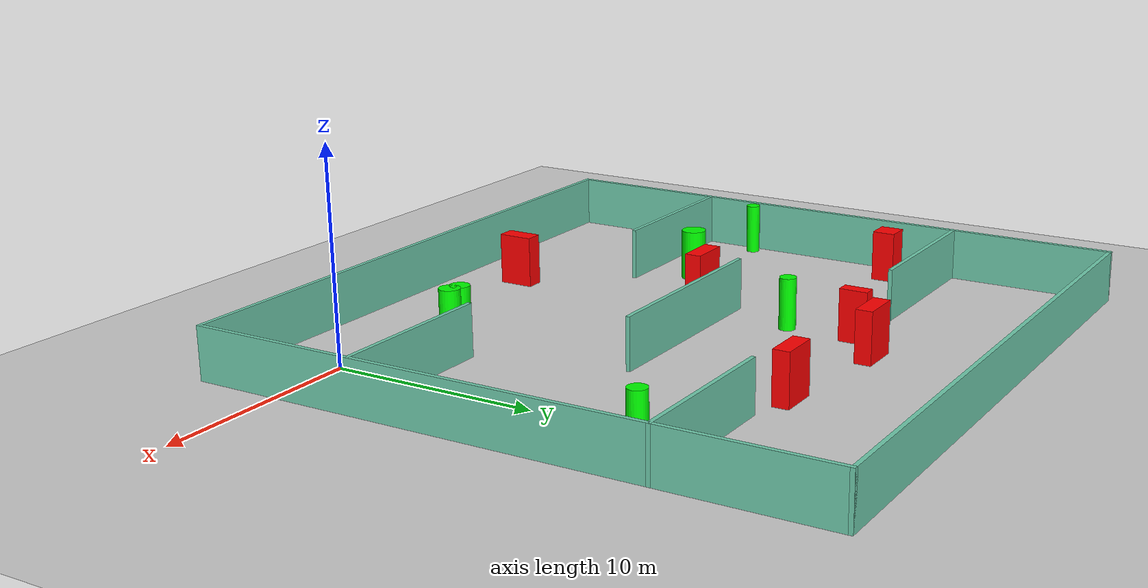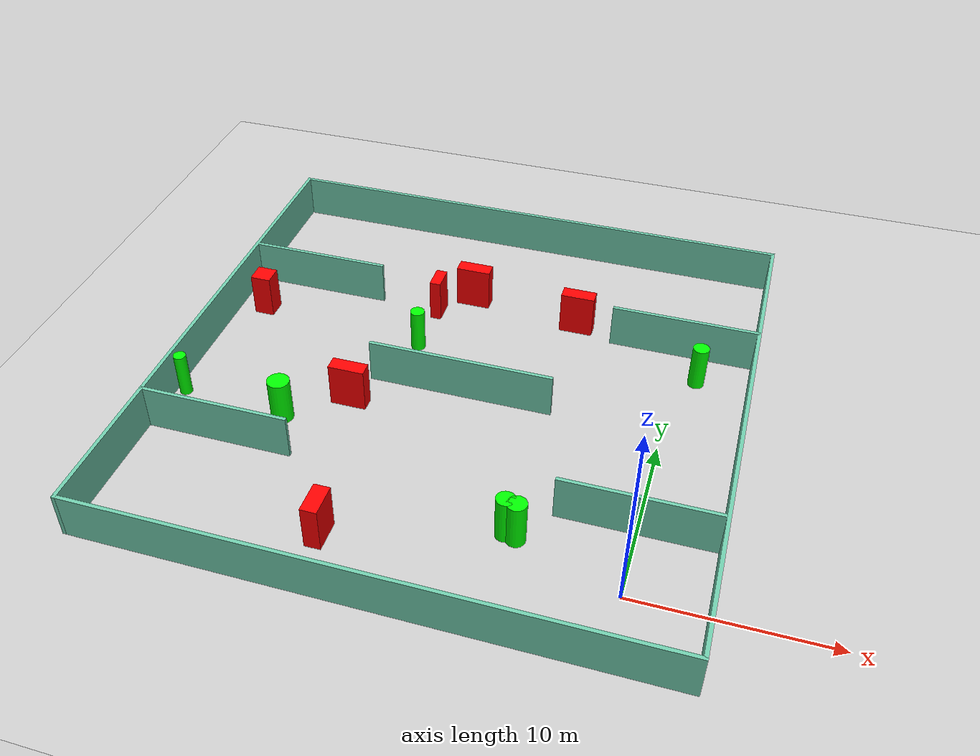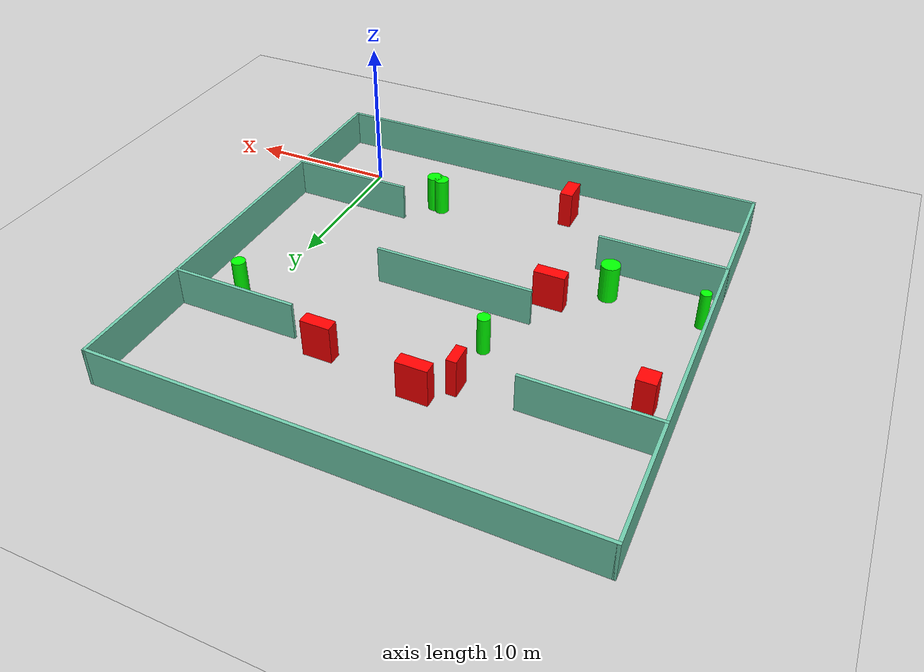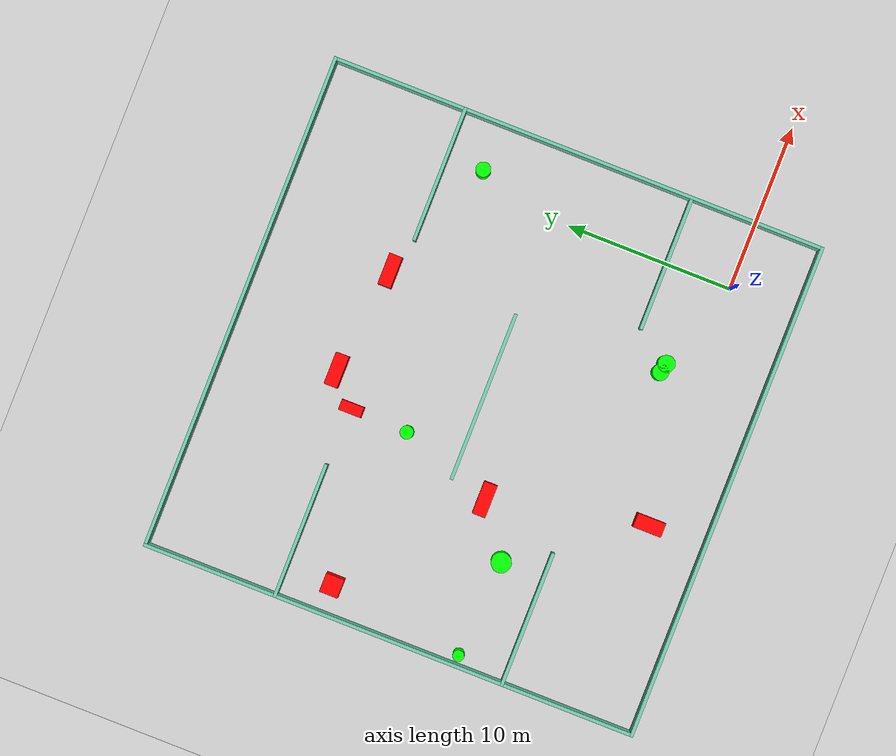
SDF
<sdf version="1.7">
 <world name="default">
  <light name="sun" type="directional">
   <pose>0 0 10 0 -0 0</pose>
   <diffuse>0.8 0.8 0.8 1</diffuse>
   <specular>0.2 0.2 0.2 1</specular>
   <attenuation>
    <range>1000</range>
    <constant>0.9</constant>
    <linear>0.01</linear>
    <quadratic>0.001</quadratic>
   </attenuation>
   <direction>-0.5 0.1 -0.9</direction>
   <spot><inner_angle>0</inner_angle><outer_angle>0</outer_angle><falloff>0</falloff></spot>
  </light>
  <model name="ground_plane">
   <static>1</static>
   <link name="link">
    <collision name="collision">
     <geometry><plane><normal>0 0 1</normal><size>100 100</size></plane></geometry>
     <surface>
      <contact><collide_bitmask>65535</collide_bitmask></contact>
      <friction><ode><mu>100</mu><mu2>50</mu2></ode></friction>
     </surface>
    </collision>
    <visual name="visual">
     <cast_shadows>0</cast_shadows>
     <geometry><plane><normal>0 0 1</normal><size>100 100</size></plane></geometry>
     <material>
      <script><uri>file://media/materials/scripts/gazebo.material</uri><name>Gazebo/Grey</name></script>
     </material>
    </visual>
   </link>
  </model>
  <gravity>0 0 -9.8</gravity>
  <magnetic_field>6e-06 2.3e-05 -4.2e-05</magnetic_field>
  <atmosphere type="adiabatic"/>
  <physics type="ode">
   <max_step_size>0.001</max_step_size>
   <real_time_factor>1</real_time_factor>
   <real_time_update_rate>1000</real_time_update_rate>
  </physics>
  <scene><ambient>0.4 0.4 0.4 1</ambient><background>0.7 0.7 0.7 1</background><shadows>1</shadows></scene>
  <spherical_coordinates>
   <surface_model>EARTH_WGS84</surface_model>
   <latitude_deg>0</latitude_deg>
   <longitude_deg>0</longitude_deg>
   <elevation>0</elevation>
   <heading_deg>0</heading_deg>
  </spherical_coordinates>
  <model name="my_base_walls">
   <link name="Wall_10">
    <collision name="Wall_10_Collision">
     <geometry><box><size>8.2 0.2 2.5</size></box></geometry>
     <pose>0 0 1.25 0 -0 0</pose>
    </collision>
    <visual name="Wall_10_Visual">
     <pose>0 0 1.25 0 -0 0</pose>
     <geometry><box><size>8.2 0.2 2.5</size></box></geometry>
     <material>
      <script><uri>file://media/materials/scripts/gazebo.material</uri><name>Gazebo/Grey</name></script>
      <ambient>0.435294 0.796078 0.67451 1</ambient>
     </material>
     <meta><layer>0</layer></meta>
    </visual>
    <pose>-11 -7 0 0 -0 0</pose>
   </link>
   <link name="Wall_12">
    <collision name="Wall_12_Collision">
     <geometry><box><size>8.2 0.2 2.5</size></box></geometry>
     <pose>0 0 1.25 0 -0 0</pose>
    </collision>
    <visual name="Wall_12_Visual">
     <pose>0 0 1.25 0 -0 0</pose>
     <geometry><box><size>8.2 0.2 2.5</size></box></geometry>
     <material>
      <script><uri>file://media/materials/scripts/gazebo.material</uri><name>Gazebo/Grey</name></script>
      <ambient>0.435294 0.796078 0.67451 1</ambient>
     </material>
     <meta><layer>0</layer></meta>
    </visual>
    <pose>-11 7 0 0 -0 0</pose>
   </link>
   <link name="Wall_14">
    <collision name="Wall_14_Collision">
     <geometry><box><size>8.2 0.2 2.5</size></box></geometry>
     <pose>0 0 1.25 0 -0 0</pose>
    </collision>
    <visual name="Wall_14_Visual">
     <pose>0 0 1.25 0 -0 0</pose>
     <geometry><box><size>8.2 0.2 2.5</size></box></geometry>
     <material>
      <script><uri>file://media/materials/scripts/gazebo.material</uri><name>Gazebo/Grey</name></script>
      <ambient>0.435294 0.796078 0.67451 1</ambient>
     </material>
     <meta><layer>0</layer></meta>
    </visual>
    <pose>11 7 0 0 -0 3.14159</pose>
   </link>
   <link name="Wall_16">
    <collision name="Wall_16_Collision">
     <geometry><box><size>10.2 0.2 2.5</size></box></geometry>
     <pose>0 0 1.25 0 -0 0</pose>
    </collision>
    <visual name="Wall_16_Visual">
     <pose>0 0 1.25 0 -0 0</pose>
     <geometry><box><size>10.2 0.2 2.5</size></box></geometry>
     <material>
      <script><uri>file://media/materials/scripts/gazebo.material</uri><name>Gazebo/Grey</name></script>
      <ambient>0.435294 0.796078 0.67451 1</ambient>
     </material>
     <meta><layer>0</layer></meta>
    </visual>
    <pose>0 0 0 0 -0 3.14159</pose>
   </link>
   <link name="Wall_2">
    <collision name="Wall_2_Collision">
     <geometry><box><size>30.2 0.2 2.5</size></box></geometry>
     <pose>0 0 1.25 0 -0 0</pose>
    </collision>
    <visual name="Wall_2_Visual">
     <pose>0 0 1.25 0 -0 0</pose>
     <geometry><box><size>30.2 0.2 2.5</size></box></geometry>
     <material>
      <script><uri>file://media/materials/scripts/gazebo.material</uri><name>Gazebo/Grey</name></script>
      <ambient>0.435294 0.796078 0.67451 1</ambient>
     </material>
     <meta><layer>0</layer></meta>
    </visual>
    <pose>0 -15 0 0 -0 3.14159</pose>
   </link>
   <link name="Wall_3">
    <collision name="Wall_3_Collision">
     <geometry><box><size>30.2 0.2 2.5</size></box></geometry>
     <pose>0 0 1.25 0 -0 0</pose>
    </collision>
    <visual name="Wall_3_Visual">
     <pose>0 0 1.25 0 -0 0</pose>
     <geometry><box><size>30.2 0.2 2.5</size></box></geometry>
     <material>
      <script><uri>file://media/materials/scripts/gazebo.material</uri><name>Gazebo/Grey</name></script>
      <ambient>0.435294 0.796078 0.67451 1</ambient>
     </material>
     <meta><layer>0</layer></meta>
    </visual>
    <pose>-15 0 0 0 -0 1.5708</pose>
   </link>
   <link name="Wall_4">
    <collision name="Wall_4_Collision">
     <geometry><box><size>30.2 0.2 2.5</size></box></geometry>
     <pose>0 0 1.25 0 -0 0</pose>
    </collision>
    <visual name="Wall_4_Visual">
     <pose>0 0 1.25 0 -0 0</pose>
     <geometry><box><size>30.2 0.2 2.5</size></box></geometry>
     <material>
      <script><uri>file://media/materials/scripts/gazebo.material</uri><name>Gazebo/Grey</name></script>
      <ambient>0.435294 0.796078 0.67451 1</ambient>
     </material>
     <meta><layer>0</layer></meta>
    </visual>
    <pose>0 15 0 0 -0 0</pose>
   </link>
   <link name="Wall_6">
    <collision name="Wall_6_Collision">
     <geometry><box><size>30.2 0.2 2.5</size></box></geometry>
     <pose>0 0 1.25 0 -0 0</pose>
    </collision>
    <visual name="Wall_6_Visual">
     <pose>0 0 1.25 0 -0 0</pose>
     <geometry><box><size>30.2 0.2 2.5</size></box></geometry>
     <material>
      <script><uri>file://media/materials/scripts/gazebo.material</uri><name>Gazebo/Grey</name></script>
      <ambient>0.435294 0.796078 0.67451 1</ambient>
     </material>
     <meta><layer>0</layer></meta>
    </visual>
    <pose>15 0 0 0 -0 1.5708</pose>
   </link>
   <link name="Wall_8">
    <collision name="Wall_8_Collision">
     <geometry><box><size>8.2 0.2 2.5</size></box></geometry>
     <pose>0 0 1.25 0 -0 0</pose>
    </collision>
    <visual name="Wall_8_Visual">
     <pose>0 0 1.25 0 -0 0</pose>
     <geometry><box><size>8.2 0.2 2.5</size></box></geometry>
     <material>
      <script><uri>file://media/materials/scripts/gazebo.material</uri><name>Gazebo/Grey</name></script>
      <ambient>0.435294 0.796078 0.67451 1</ambient>
     </material>
     <meta><layer>0</layer></meta>
    </visual>
    <pose>11 -7 0 0 -0 3.14159</pose>
   </link>
   <static>1</static>
   <pose>-11 11 0 0 -0 0</pose>
  </model>
  <model name="cylinder1">
   <static>1</static>
   <link name="link">
    <inertial>
     <mass>1</mass>
     <inertia><ixx>0.5</ixx><ixy>0</ixy><ixz>0</ixz><iyy>0.5</iyy><iyz>0</iyz><izz>1</izz></inertia>
    </inertial>
    <collision name="collision">
     <geometry><cylinder><radius>0.401361238079147</radius><length>2.5</length></cylinder></geometry>
    </collision>
    <visual name="visual">
     <geometry><cylinder><radius>0.401361238079147</radius><length>2.5</length></cylinder></geometry>
     <material>
      <ambient>0 1 0 1</ambient>
      <diffuse>0 1 0 1</diffuse>
      <specular>0.1 0.1 0.1 1</specular>
      <emissive>0 0 0 0</emissive>
     </material>
    </visual>
   </link>
   <pose>-14.509125277909682 14.37158566146227 1.25 0 0 0</pose>
  </model>
  <model name="cylinder2">
   <static>1</static>
   <link name="link">
    <inertial>
     <mass>1</mass>
     <inertia><ixx>0.5</ixx><ixy>0</ixy><ixz>0</ixz><iyy>0.5</iyy><iyz>0</iyz><izz>1</izz></inertia>
    </inertial>
    <collision name="collision">
     <geometry><cylinder><radius>0.6027890964264395</radius><length>2.5</length></cylinder></geometry>
    </collision>
    <visual name="visual">
     <geometry><cylinder><radius>0.6027890964264395</radius><length>2.5</length></cylinder></geometry>
     <material>
      <ambient>0 1 0 1</ambient>
      <diffuse>0 1 0 1</diffuse>
      <specular>0.1 0.1 0.1 1</specular>
      <emissive>0 0 0 0</emissive>
     </material>
    </visual>
   </link>
   <pose>-19.497487253452796 6.590904580832239 1.25 0 0 0</pose>
  </model>
  <model name="cylinder3">
   <static>1</static>
   <link name="link">
    <inertial>
     <mass>1</mass>
     <inertia><ixx>0.5</ixx><ixy>0</ixy><ixz>0</ixz><iyy>0.5</iyy><iyz>0</iyz><izz>1</izz></inertia>
    </inertial>
    <collision name="collision">
     <geometry><cylinder><radius>0.5093492643379117</radius><length>2.5</length></cylinder></geometry>
    </collision>
    <visual name="visual">
     <geometry><cylinder><radius>0.5093492643379117</radius><length>2.5</length></cylinder></geometry>
     <material>
      <ambient>0 1 0 1</ambient>
      <diffuse>0 1 0 1</diffuse>
      <specular>0.1 0.1 0.1 1</specular>
      <emissive>0 0 0 0</emissive>
     </material>
    </visual>
   </link>
   <pose>-5.414266744483559 1.902683252799645 1.25 0 0 0</pose>
  </model>
  <model name="cylinder4">
   <static>1</static>
   <link name="link">
    <inertial>
     <mass>1</mass>
     <inertia><ixx>0.5</ixx><ixy>0</ixy><ixz>0</ixz><iyy>0.5</iyy><iyz>0</iyz><izz>1</izz></inertia>
    </inertial>
    <collision name="collision">
     <geometry><cylinder><radius>0.48404682671117466</radius><length>2.5</length></cylinder></geometry>
    </collision>
    <visual name="visual">
     <geometry><cylinder><radius>0.48404682671117466</radius><length>2.5</length></cylinder></geometry>
     <material>
      <ambient>0 1 0 1</ambient>
      <diffuse>0 1 0 1</diffuse>
      <specular>0.1 0.1 0.1 1</specular>
      <emissive>0 0 0 0</emissive>
     </material>
    </visual>
   </link>
   <pose>-5.990830861314306 2.043737272038152 1.25 0 0 0</pose>
  </model>
  <model name="cylinder5">
   <static>1</static>
   <link name="link">
    <inertial>
     <mass>1</mass>
     <inertia><ixx>0.5</ixx><ixy>0</ixy><ixz>0</ixz><iyy>0.5</iyy><iyz>0</iyz><izz>1</izz></inertia>
    </inertial>
    <collision name="collision">
     <geometry><cylinder><radius>0.44514385820778624</radius><length>2.5</length></cylinder></geometry>
    </collision>
    <visual name="visual">
     <geometry><cylinder><radius>0.44514385820778624</radius><length>2.5</length></cylinder></geometry>
     <material>
      <ambient>0 1 0 1</ambient>
      <diffuse>0 1 0 1</diffuse>
      <specular>0.1 0.1 0.1 1</specular>
      <emissive>0 0 0 0</emissive>
     </material>
    </visual>
   </link>
   <pose>1.1445238891450913 15.774002044909615 1.25 0 0 0</pose>
  </model>
  <model name="cylinder6">
   <static>1</static>
   <link name="link">
    <inertial>
     <mass>1</mass>
     <inertia><ixx>0.5</ixx><ixy>0</ixy><ixz>0</ixz><iyy>0.5</iyy><iyz>0</iyz><izz>1</izz></inertia>
    </inertial>
    <collision name="collision">
     <geometry><cylinder><radius>0.3402357755858489</radius><length>2.5</length></cylinder></geometry>
    </collision>
    <visual name="visual">
     <geometry><cylinder><radius>0.3402357755858489</radius><length>2.5</length></cylinder></geometry>
     <material>
      <ambient>0 1 0 1</ambient>
      <diffuse>0 1 0 1</diffuse>
      <specular>0.1 0.1 0.1 1</specular>
      <emissive>0 0 0 0</emissive>
     </material>
    </visual>
   </link>
   <pose>-25.376792995646312 6.929254015865572 1.25 0 0 0</pose>
  </model>
  <model name="box1">
   <static>1</static>
   <link name="link">
    <inertial>
     <mass>1</mass>
     <inertia><ixx>0.083</ixx><ixy>0</ixy><ixz>0</ixz><iyy>0.083</iyy><iyz>0</iyz><izz>0.083</izz></inertia>
    </inertial>
    <collision name="collision">
     <geometry><box><size>1.9017908884468406 0.7971543912032062 2.5</size></box></geometry>
    </collision>
    <visual name="visual">
     <geometry><box><size>1.9017908884468406 0.7971543912032062 2.5</size></box></geometry>
     <material>
      <ambient>1 0 0 1</ambient>
      <diffuse>1 0 0 1</diffuse>
      <specular>0.1 0.1 0.1 1</specular>
      <emissive>0 0 0 0</emissive>
     </material>
    </visual>
    <sensor name="my_contact" type="contact">
     <contact><collision>box_collision</collision><topic>__default_topic__</topic></contact>
    </sensor>
   </link>
   <pose>-6.207568754361132 18.642732777768536 1.25 0 0 0</pose>
  </model>
  <model name="box2">
   <static>1</static>
   <link name="link">
    <inertial>
     <mass>1</mass>
     <inertia><ixx>0.083</ixx><ixy>0</ixy><ixz>0</ixz><iyy>0.083</iyy><iyz>0</iyz><izz>0.083</izz></inertia>
    </inertial>
    <collision name="collision">
     <geometry><box><size>1.976693267562354 0.8100872482029191 2.5</size></box></geometry>
    </collision>
    <visual name="visual">
     <geometry><box><size>1.976693267562354 0.8100872482029191 2.5</size></box></geometry>
     <material>
      <ambient>1 0 0 1</ambient>
      <diffuse>1 0 0 1</diffuse>
      <specular>0.1 0.1 0.1 1</specular>
      <emissive>0 0 0 0</emissive>
     </material>
    </visual>
    <sensor name="my_contact" type="contact">
     <contact><collision>box_collision</collision><topic>__default_topic__</topic></contact>
    </sensor>
   </link>
   <pose>-16.47229649646571 8.786891983561251 1.25 0 0 0</pose>
  </model>
  <model name="box3">
   <static>1</static>
   <link name="link">
    <inertial>
     <mass>1</mass>
     <inertia><ixx>0.083</ixx><ixy>0</ixy><ixz>0</ixz><iyy>0.083</iyy><iyz>0</iyz><izz>0.083</izz></inertia>
    </inertial>
    <collision name="collision">
     <geometry><box><size>0.8556285216161339 1.7135896442943452 2.5</size></box></geometry>
    </collision>
    <visual name="visual">
     <geometry><box><size>0.8556285216161339 1.7135896442943452 2.5</size></box></geometry>
     <material>
      <ambient>1 0 0 1</ambient>
      <diffuse>1 0 0 1</diffuse>
      <specular>0.1 0.1 0.1 1</specular>
      <emissive>0 0 0 0</emissive>
     </material>
    </visual>
    <sensor name="my_contact" type="contact">
     <contact><collision>box_collision</collision><topic>__default_topic__</topic></contact>
    </sensor>
   </link>
   <pose>-14.399245568548764 -0.5596101623470444 1.25 0 0 0</pose>
  </model>
  <model name="box4">
   <static>1</static>
   <link name="link">
    <inertial>
     <mass>1</mass>
     <inertia><ixx>0.083</ixx><ixy>0</ixy><ixz>0</ixz><iyy>0.083</iyy><iyz>0</iyz><izz>0.083</izz></inertia>
    </inertial>
    <collision name="collision">
     <geometry><box><size>0.6328806207758125 1.3629738700703722 2.5</size></box></geometry>
    </collision>
    <visual name="visual">
     <geometry><box><size>0.6328806207758125 1.3629738700703722 2.5</size></box></geometry>
     <material>
      <ambient>1 0 0 1</ambient>
      <diffuse>1 0 0 1</diffuse>
      <specular>0.1 0.1 0.1 1</specular>
      <emissive>0 0 0 0</emissive>
     </material>
    </visual>
    <sensor name="my_contact" type="contact">
     <contact><collision>box_collision</collision><topic>__default_topic__</topic></contact>
    </sensor>
   </link>
   <pose>-14.392674024794427 17.835306079028705 1.25 0 0 0</pose>
  </model>
  <model name="box5">
   <static>1</static>
   <link name="link">
    <inertial>
     <mass>1</mass>
     <inertia><ixx>0.083</ixx><ixy>0</ixy><ixz>0</ixz><iyy>0.083</iyy><iyz>0</iyz><izz>0.083</izz></inertia>
    </inertial>
    <collision name="collision">
     <geometry><box><size>1.1457554174136861 1.1194902925194583 2.5</size></box></geometry>
    </collision>
    <visual name="visual">
     <geometry><box><size>1.1457554174136861 1.1194902925194583 2.5</size></box></geometry>
     <material>
      <ambient>1 0 0 1</ambient>
      <diffuse>1 0 0 1</diffuse>
      <specular>0.1 0.1 0.1 1</specular>
      <emissive>0 0 0 0</emissive>
     </material>
    </visual>
    <sensor name="my_contact" type="contact">
     <contact><collision>box_collision</collision><topic>__default_topic__</topic></contact>
    </sensor>
   </link>
   <pose>-24.26870052767859 15.165688774014804 1.25 0 0 0</pose>
  </model>
  <model name="box6">
   <static>1</static>
   <link name="link">
    <inertial>
     <mass>1</mass>
     <inertia><ixx>0.083</ixx><ixy>0</ixy><ixz>0</ixz><iyy>0.083</iyy><iyz>0</iyz><izz>0.083</izz></inertia>
    </inertial>
    <collision name="collision">
     <geometry><box><size>1.9586922265116842 0.8085856966590568 2.5</size></box></geometry>
    </collision>
    <visual name="visual">
     <geometry><box><size>1.9586922265116842 0.8085856966590568 2.5</size></box></geometry>
     <material>
      <ambient>1 0 0 1</ambient>
      <diffuse>1 0 0 1</diffuse>
      <specular>0.1 0.1 0.1 1</specular>
      <emissive>0 0 0 0</emissive>
     </material>
    </visual>
    <sensor name="my_contact" type="contact">
     <contact><collision>box_collision</collision><topic>__default_topic__</topic></contact>
    </sensor>
   </link>
   <pose>-12.646145698482094 19.425726570307184 1.25 0 0 0</pose>
  </model>
 </world>
</sdf>
